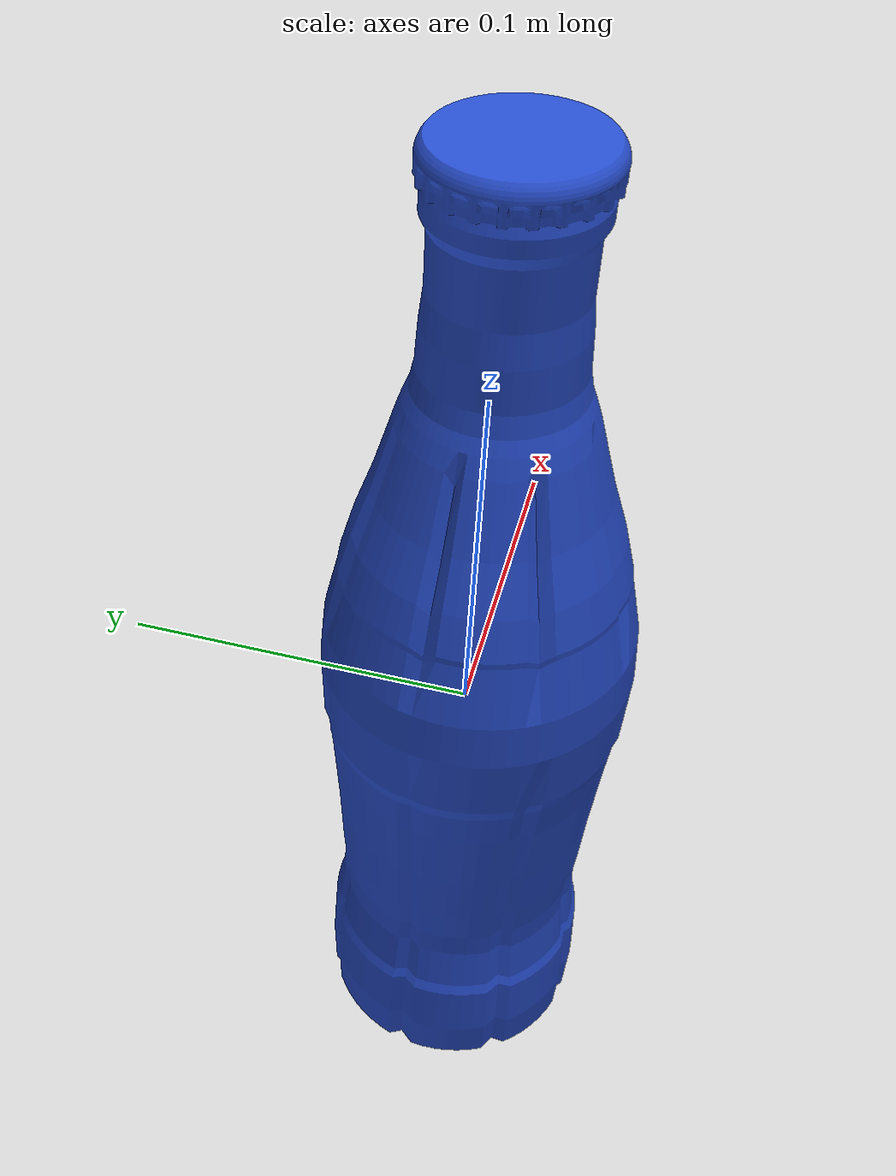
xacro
<?xml version="1.0"?>
<robot xmlns:xacro="http://www.ros.org/wiki/xacro" name="bottle">
    <xacro:property name="mass" value="1.5" />
    <xacro:property name="height" value="0.29" />
    <xacro:property name="width" value="0.085" />
    <xacro:property name="length" value="0.085" />
    <link name="bottle_footprint"></link>
    <link name="bottle">
        <inertial>
            <origin xyz="0 0 0" rpy="0 0 0"/>
            <mass value="${mass}"/>
            <inertia ixx="${(1/12)*mass*((width**2) + (height**2))}" ixy="0" ixz="0" iyy="${(1/12)*mass*((length**2) + (height**2))}" iyz="0" izz="${(1/2)*mass*((width**2) + (length**2))}" />
        </inertial>
        <visual>
            <origin xyz="0 0 -0.03" rpy="0 0 0"/>
            <geometry>
                <mesh filename="$(find moveit_apps)/urdf/meshes/coke-bottle.stl" scale="0.1 0.1 0.1"/>
            </geometry>
        </visual>
        <collision>
            <geometry>
                <box size="${length} ${width} ${height}"/>
            </geometry>
        </collision>
    </link>
    <joint name="base_bottle" type="fixed">
        <parent link="bottle_footprint" />
        <child link="bottle" />
        <origin xyz="0 0 0" rpy="0 0 0" />
    </joint>
    <gazebo reference="bottle">
        <material>Gazebo/Blue</material>
        <dampingFactor>0.005</dampingFactor>
        <kp>1000000</kp>
        <kd>1.0</kd>
        <mu1>0.2</mu1>
        <mu2>0.2</mu2>
        <minDepth>0.01</minDepth>
    </gazebo>
</robot>
